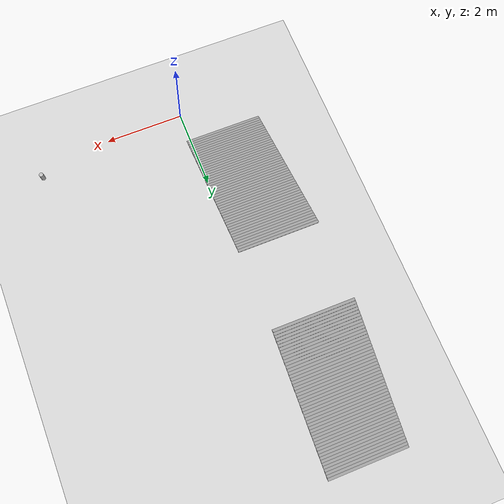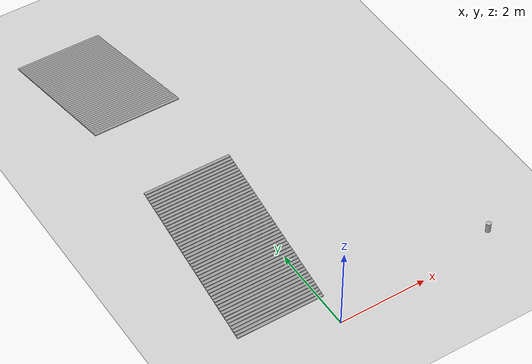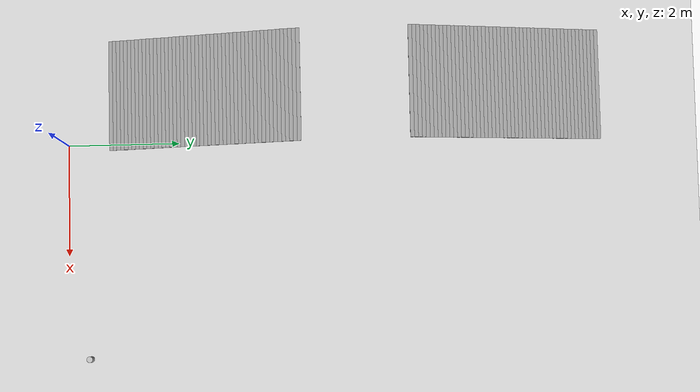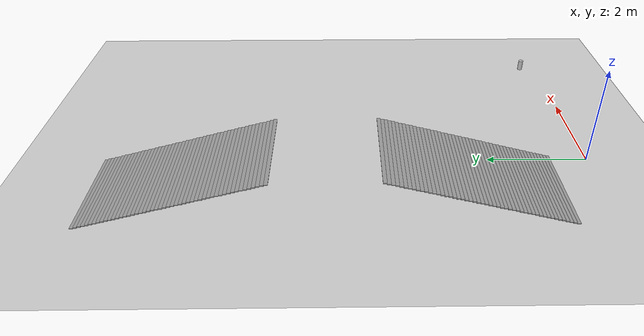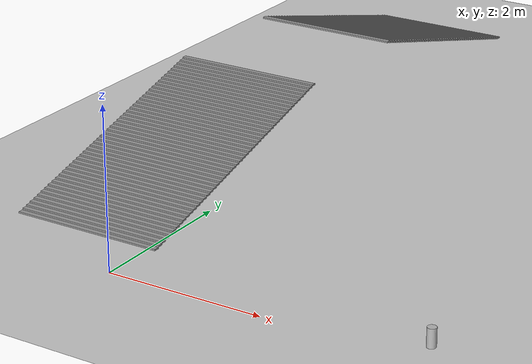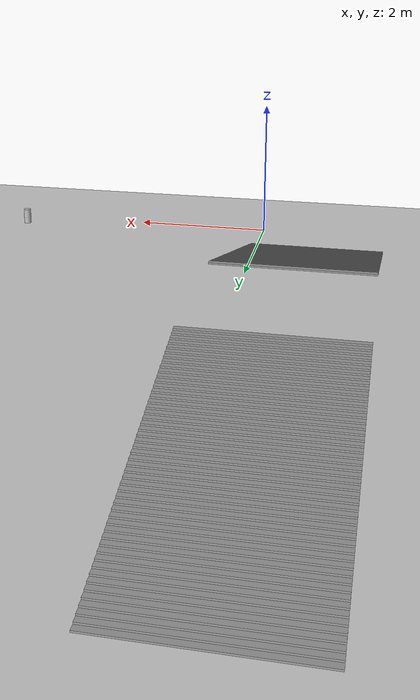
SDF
<sdf version="1.6">
 <world name="default">
  <light name="sun" type="directional">
   <pose>0 0 10 0 -0 0</pose>
   <diffuse>0.8 0.8 0.8 1</diffuse>
   <specular>0.1 0.1 0.1 1</specular>
   <attenuation>
    <range>1000</range>
    <constant>0.9</constant>
    <linear>0.01</linear>
    <quadratic>0.001</quadratic>
   </attenuation>
   <direction>-0.5 0.5 -1</direction>
  </light>
  <model name="ground_plane">
   <static>1</static>
   <link name="link">
    <collision name="collision">
     <geometry><plane><normal>0 0 1</normal><size>100 100</size></plane></geometry>
     <surface><friction><ode><mu>100</mu><mu2>50</mu2></ode></friction></surface>
    </collision>
    <visual name="visual">
     <cast_shadows>0</cast_shadows>
     <geometry><plane><normal>0 0 1</normal><size>100 100</size></plane></geometry>
     <material>
      <script><uri>file://media/materials/scripts/gazebo.material</uri><name>Gazebo/Grey</name></script>
     </material>
    </visual>
   </link>
  </model>
  <gravity>0 0 -9.8</gravity>
  <magnetic_field>6e-06 2.3e-05 -4.2e-05</magnetic_field>
  <atmosphere type="adiabatic"/>
  <physics name="default_physics" default="0" type="ode">
   <max_step_size>0.001</max_step_size>
   <real_time_factor>1</real_time_factor>
   <real_time_update_rate>1000</real_time_update_rate>
  </physics>
  <scene><ambient>0.4 0.4 0.4 1</ambient><background>0.7 0.7 0.7 1</background><shadows>1</shadows></scene>
  <spherical_coordinates>
   <surface_model>EARTH_WGS84</surface_model>
   <latitude_deg>0</latitude_deg>
   <longitude_deg>0</longitude_deg>
   <elevation>0</elevation>
   <heading_deg>0</heading_deg>
  </spherical_coordinates>
  <model name="beer">
   <link name="link">
    <pose>0 0 0.115 0 -0 0</pose>
    <inertial>
     <mass>0.39</mass>
     <inertia><ixx>0.00058</ixx><ixy>0</ixy><ixz>0</ixz><iyy>0.00058</iyy><iyz>0</iyz><izz>0.00019</izz></inertia>
    </inertial>
    <collision name="collision">
     <geometry><cylinder><radius>0.055</radius><length>0.23</length></cylinder></geometry>
    </collision>
    <visual name="visual">
     <geometry><cylinder><radius>0.055</radius><length>0.23</length></cylinder></geometry>
     <material>
      <script>
       <uri>model://beer/materials/scripts</uri>
       <uri>model://beer/materials/textures</uri>
       <name>Beer/Diffuse</name>
      </script>
     </material>
    </visual>
   </link>
   <pose>3.85469 0.373429 -7e-06 -1e-06 0 0.000297</pose>
  </model>
  <model name="table95">
   <pose>-0.91859 7.8959 0 0 -0 0</pose>
   <link name="Stairs_5">
    <visual name="Stairs_5_Visual_0">
     <pose>0 1.715 0.0095 0 -0 0</pose>
     <geometry><box><size>2 0.07 0.019</size></box></geometry>
     <material>
      <script><uri>file://media/materials/scripts/gazebo.material</uri><name>Gazebo/Grey</name></script>
      <ambient>1 1 1 1</ambient>
     </material>
     <meta><layer>0</layer></meta>
    </visual>
    <collision name="Stairs_5_Collision_0">
     <geometry><box><size>2 0.07 0.019</size></box></geometry>
     <pose>0 1.715 0.0095 0 -0 0</pose>
    </collision>
    <visual name="Stairs_5_Visual_1">
     <pose>0 1.645 0.0285 0 -0 0</pose>
     <geometry><box><size>2 0.07 0.019</size></box></geometry>
     <material>
      <script><uri>file://media/materials/scripts/gazebo.material</uri><name>Gazebo/Grey</name></script>
      <ambient>1 1 1 1</ambient>
     </material>
     <meta><layer>0</layer></meta>
    </visual>
    <collision name="Stairs_5_Collision_1">
     <geometry><box><size>2 0.07 0.019</size></box></geometry>
     <pose>0 1.645 0.0285 0 -0 0</pose>
    </collision>
    <visual name="Stairs_5_Visual_2">
     <pose>0 1.575 0.0475 0 -0 0</pose>
     <geometry><box><size>2 0.07 0.019</size></box></geometry>
     <material>
      <script><uri>file://media/materials/scripts/gazebo.material</uri><name>Gazebo/Grey</name></script>
      <ambient>1 1 1 1</ambient>
     </material>
     <meta><layer>0</layer></meta>
    </visual>
    <collision name="Stairs_5_Collision_2">
     <geometry><box><size>2 0.07 0.019</size></box></geometry>
     <pose>0 1.575 0.0475 0 -0 0</pose>
    </collision>
    <visual name="Stairs_5_Visual_3">
     <pose>0 1.505 0.0665 0 -0 0</pose>
     <geometry><box><size>2 0.07 0.019</size></box></geometry>
     <material>
      <script><uri>file://media/materials/scripts/gazebo.material</uri><name>Gazebo/Grey</name></script>
      <ambient>1 1 1 1</ambient>
     </material>
     <meta><layer>0</layer></meta>
    </visual>
    <collision name="Stairs_5_Collision_3">
     <geometry><box><size>2 0.07 0.019</size></box></geometry>
     <pose>0 1.505 0.0665 0 -0 0</pose>
    </collision>
    <visual name="Stairs_5_Visual_4">
     <pose>0 1.435 0.0855 0 -0 0</pose>
     <geometry><box><size>2 0.07 0.019</size></box></geometry>
     <material>
      <script><uri>file://media/materials/scripts/gazebo.material</uri><name>Gazebo/Grey</name></script>
      <ambient>1 1 1 1</ambient>
     </material>
     <meta><layer>0</layer></meta>
    </visual>
    <collision name="Stairs_5_Collision_4">
     <geometry><box><size>2 0.07 0.019</size></box></geometry>
     <pose>0 1.435 0.0855 0 -0 0</pose>
    </collision>
    <visual name="Stairs_5_Visual_5">
     <pose>0 1.365 0.1045 0 -0 0</pose>
     <geometry><box><size>2 0.07 0.019</size></box></geometry>
     <material>
      <script><uri>file://media/materials/scripts/gazebo.material</uri><name>Gazebo/Grey</name></script>
      <ambient>1 1 1 1</ambient>
     </material>
     <meta><layer>0</layer></meta>
    </visual>
    <collision name="Stairs_5_Collision_5">
     <geometry><box><size>2 0.07 0.019</size></box></geometry>
     <pose>0 1.365 0.1045 0 -0 0</pose>
    </collision>
    <visual name="Stairs_5_Visual_6">
     <pose>0 1.295 0.1235 0 -0 0</pose>
     <geometry><box><size>2 0.07 0.019</size></box></geometry>
     <material>
      <script><uri>file://media/materials/scripts/gazebo.material</uri><name>Gazebo/Grey</name></script>
      <ambient>1 1 1 1</ambient>
     </material>
     <meta><layer>0</layer></meta>
    </visual>
    <collision name="Stairs_5_Collision_6">
     <geometry><box><size>2 0.07 0.019</size></box></geometry>
     <pose>0 1.295 0.1235 0 -0 0</pose>
    </collision>
    <visual name="Stairs_5_Visual_7">
     <pose>0 1.225 0.1425 0 -0 0</pose>
     <geometry><box><size>2 0.07 0.019</size></box></geometry>
     <material>
      <script><uri>file://media/materials/scripts/gazebo.material</uri><name>Gazebo/Grey</name></script>
      <ambient>1 1 1 1</ambient>
     </material>
     <meta><layer>0</layer></meta>
    </visual>
    <collision name="Stairs_5_Collision_7">
     <geometry><box><size>2 0.07 0.019</size></box></geometry>
     <pose>0 1.225 0.1425 0 -0 0</pose>
    </collision>
    <visual name="Stairs_5_Visual_8">
     <pose>0 1.155 0.1615 0 -0 0</pose>
     <geometry><box><size>2 0.07 0.019</size></box></geometry>
     <material>
      <script><uri>file://media/materials/scripts/gazebo.material</uri><name>Gazebo/Grey</name></script>
      <ambient>1 1 1 1</ambient>
     </material>
     <meta><layer>0</layer></meta>
    </visual>
    <collision name="Stairs_5_Collision_8">
     <geometry><box><size>2 0.07 0.019</size></box></geometry>
     <pose>0 1.155 0.1615 0 -0 0</pose>
    </collision>
    <visual name="Stairs_5_Visual_9">
     <pose>0 1.085 0.1805 0 -0 0</pose>
     <geometry><box><size>2 0.07 0.019</size></box></geometry>
     <material>
      <script><uri>file://media/materials/scripts/gazebo.material</uri><name>Gazebo/Grey</name></script>
      <ambient>1 1 1 1</ambient>
     </material>
     <meta><layer>0</layer></meta>
    </visual>
    <collision name="Stairs_5_Collision_9">
     <geometry><box><size>2 0.07 0.019</size></box></geometry>
     <pose>0 1.085 0.1805 0 -0 0</pose>
    </collision>
    <visual name="Stairs_5_Visual_10">
     <pose>0 1.015 0.1995 0 -0 0</pose>
     <geometry><box><size>2 0.07 0.019</size></box></geometry>
     <material>
      <script><uri>file://media/materials/scripts/gazebo.material</uri><name>Gazebo/Grey</name></script>
      <ambient>1 1 1 1</ambient>
     </material>
     <meta><layer>0</layer></meta>
    </visual>
    <collision name="Stairs_5_Collision_10">
     <geometry><box><size>2 0.07 0.019</size></box></geometry>
     <pose>0 1.015 0.1995 0 -0 0</pose>
    </collision>
    <visual name="Stairs_5_Visual_11">
     <pose>0 0.945 0.2185 0 -0 0</pose>
     <geometry><box><size>2 0.07 0.019</size></box></geometry>
     <material>
      <script><uri>file://media/materials/scripts/gazebo.material</uri><name>Gazebo/Grey</name></script>
      <ambient>1 1 1 1</ambient>
     </material>
     <meta><layer>0</layer></meta>
    </visual>
    <collision name="Stairs_5_Collision_11">
     <geometry><box><size>2 0.07 0.019</size></box></geometry>
     <pose>0 0.945 0.2185 0 -0 0</pose>
    </collision>
    <visual name="Stairs_5_Visual_12">
     <pose>0 0.875 0.2375 0 -0 0</pose>
     <geometry><box><size>2 0.07 0.019</size></box></geometry>
     <material>
      <script><uri>file://media/materials/scripts/gazebo.material</uri><name>Gazebo/Grey</name></script>
      <ambient>1 1 1 1</ambient>
     </material>
     <meta><layer>0</layer></meta>
    </visual>
    <collision name="Stairs_5_Collision_12">
     <geometry><box><size>2 0.07 0.019</size></box></geometry>
     <pose>0 0.875 0.2375 0 -0 0</pose>
    </collision>
    <visual name="Stairs_5_Visual_13">
     <pose>0 0.805 0.2565 0 -0 0</pose>
     <geometry><box><size>2 0.07 0.019</size></box></geometry>
     <material>
      <script><uri>file://media/materials/scripts/gazebo.material</uri><name>Gazebo/Grey</name></script>
      <ambient>1 1 1 1</ambient>
     </material>
     <meta><layer>0</layer></meta>
    </visual>
    <collision name="Stairs_5_Collision_13">
     <geometry><box><size>2 0.07 0.019</size></box></geometry>
     <pose>0 0.805 0.2565 0 -0 0</pose>
    </collision>
    <visual name="Stairs_5_Visual_14">
     <pose>0 0.735 0.2755 0 -0 0</pose>
     <geometry><box><size>2 0.07 0.019</size></box></geometry>
     <material>
      <script><uri>file://media/materials/scripts/gazebo.material</uri><name>Gazebo/Grey</name></script>
      <ambient>1 1 1 1</ambient>
     </material>
     <meta><layer>0</layer></meta>
    </visual>
    <collision name="Stairs_5_Collision_14">
     <geometry><box><size>2 0.07 0.019</size></box></geometry>
     <pose>0 0.735 0.2755 0 -0 0</pose>
    </collision>
    <visual name="Stairs_5_Visual_15">
     <pose>0 0.665 0.2945 0 -0 0</pose>
     <geometry><box><size>2 0.07 0.019</size></box></geometry>
     <material>
      <script><uri>file://media/materials/scripts/gazebo.material</uri><name>Gazebo/Grey</name></script>
      <ambient>1 1 1 1</ambient>
     </material>
     <meta><layer>0</layer></meta>
    </visual>
    <collision name="Stairs_5_Collision_15">
     <geometry><box><size>2 0.07 0.019</size></box></geometry>
     <pose>0 0.665 0.2945 0 -0 0</pose>
    </collision>
    <visual name="Stairs_5_Visual_16">
     <pose>0 0.595 0.3135 0 -0 0</pose>
     <geometry><box><size>2 0.07 0.019</size></box></geometry>
     <material>
      <script><uri>file://media/materials/scripts/gazebo.material</uri><name>Gazebo/Grey</name></script>
      <ambient>1 1 1 1</ambient>
     </material>
     <meta><layer>0</layer></meta>
    </visual>
    <collision name="Stairs_5_Collision_16">
     <geometry><box><size>2 0.07 0.019</size></box></geometry>
     <pose>0 0.595 0.3135 0 -0 0</pose>
    </collision>
    <visual name="Stairs_5_Visual_17">
     <pose>0 0.525 0.3325 0 -0 0</pose>
     <geometry><box><size>2 0.07 0.019</size></box></geometry>
     <material>
      <script><uri>file://media/materials/scripts/gazebo.material</uri><name>Gazebo/Grey</name></script>
      <ambient>1 1 1 1</ambient>
     </material>
     <meta><layer>0</layer></meta>
    </visual>
    <collision name="Stairs_5_Collision_17">
     <geometry><box><size>2 0.07 0.019</size></box></geometry>
     <pose>0 0.525 0.3325 0 -0 0</pose>
    </collision>
    <visual name="Stairs_5_Visual_18">
     <pose>0 0.455 0.3515 0 -0 0</pose>
     <geometry><box><size>2 0.07 0.019</size></box></geometry>
     <material>
      <script><uri>file://media/materials/scripts/gazebo.material</uri><name>Gazebo/Grey</name></script>
      <ambient>1 1 1 1</ambient>
     </material>
     <meta><layer>0</layer></meta>
    </visual>
    <collision name="Stairs_5_Collision_18">
     <geometry><box><size>2 0.07 0.019</size></box></geometry>
     <pose>0 0.455 0.3515 0 -0 0</pose>
    </collision>
    <visual name="Stairs_5_Visual_19">
     <pose>0 0.385 0.3705 0 -0 0</pose>
     <geometry><box><size>2 0.07 0.019</size></box></geometry>
     <material>
      <script><uri>file://media/materials/scripts/gazebo.material</uri><name>Gazebo/Grey</name></script>
      <ambient>1 1 1 1</ambient>
     </material>
     <meta><layer>0</layer></meta>
    </visual>
    <collision name="Stairs_5_Collision_19">
     <geometry><box><size>2 0.07 0.019</size></box></geometry>
     <pose>0 0.385 0.3705 0 -0 0</pose>
    </collision>
    <visual name="Stairs_5_Visual_20">
     <pose>0 0.315 0.3895 0 -0 0</pose>
     <geometry><box><size>2 0.07 0.019</size></box></geometry>
     <material>
      <script><uri>file://media/materials/scripts/gazebo.material</uri><name>Gazebo/Grey</name></script>
      <ambient>1 1 1 1</ambient>
     </material>
     <meta><layer>0</layer></meta>
    </visual>
    <collision name="Stairs_5_Collision_20">
     <geometry><box><size>2 0.07 0.019</size></box></geometry>
     <pose>0 0.315 0.3895 0 -0 0</pose>
    </collision>
    <visual name="Stairs_5_Visual_21">
     <pose>0 0.245 0.4085 0 -0 0</pose>
     <geometry><box><size>2 0.07 0.019</size></box></geometry>
     <material>
      <script><uri>file://media/materials/scripts/gazebo.material</uri><name>Gazebo/Grey</name></script>
      <ambient>1 1 1 1</ambient>
     </material>
     <meta><layer>0</layer></meta>
    </visual>
    <collision name="Stairs_5_Collision_21">
     <geometry><box><size>2 0.07 0.019</size></box></geometry>
     <pose>0 0.245 0.4085 0 -0 0</pose>
    </collision>
    <visual name="Stairs_5_Visual_22">
     <pose>0 0.175 0.4275 0 -0 0</pose>
     <geometry><box><size>2 0.07 0.019</size></box></geometry>
     <material>
      <script><uri>file://media/materials/scripts/gazebo.material</uri><name>Gazebo/Grey</name></script>
      <ambient>1 1 1 1</ambient>
     </material>
     <meta><layer>0</layer></meta>
    </visual>
    <collision name="Stairs_5_Collision_22">
     <geometry><box><size>2 0.07 0.019</size></box></geometry>
     <pose>0 0.175 0.4275 0 -0 0</pose>
    </collision>
    <visual name="Stairs_5_Visual_23">
     <pose>0 0.105 0.4465 0 -0 0</pose>
     <geometry><box><size>2 0.07 0.019</size></box></geometry>
     <material>
      <script><uri>file://media/materials/scripts/gazebo.material</uri><name>Gazebo/Grey</name></script>
      <ambient>1 1 1 1</ambient>
     </material>
     <meta><layer>0</layer></meta>
    </visual>
    <collision name="Stairs_5_Collision_23">
     <geometry><box><size>2 0.07 0.019</size></box></geometry>
     <pose>0 0.105 0.4465 0 -0 0</pose>
    </collision>
    <visual name="Stairs_5_Visual_24">
     <pose>0 0.035 0.4655 0 -0 0</pose>
     <geometry><box><size>2 0.07 0.019</size></box></geometry>
     <material>
      <script><uri>file://media/materials/scripts/gazebo.material</uri><name>Gazebo/Grey</name></script>
      <ambient>1 1 1 1</ambient>
     </material>
     <meta><layer>0</layer></meta>
    </visual>
    <collision name="Stairs_5_Collision_24">
     <geometry><box><size>2 0.07 0.019</size></box></geometry>
     <pose>0 0.035 0.4655 0 -0 0</pose>
    </collision>
    <visual name="Stairs_5_Visual_25">
     <pose>0 -0.035 0.4845 0 -0 0</pose>
     <geometry><box><size>2 0.07 0.019</size></box></geometry>
     <material>
      <script><uri>file://media/materials/scripts/gazebo.material</uri><name>Gazebo/Grey</name></script>
      <ambient>1 1 1 1</ambient>
     </material>
     <meta><layer>0</layer></meta>
    </visual>
    <collision name="Stairs_5_Collision_25">
     <geometry><box><size>2 0.07 0.019</size></box></geometry>
     <pose>0 -0.035 0.4845 0 -0 0</pose>
    </collision>
    <visual name="Stairs_5_Visual_26">
     <pose>0 -0.105 0.5035 0 -0 0</pose>
     <geometry><box><size>2 0.07 0.019</size></box></geometry>
     <material>
      <script><uri>file://media/materials/scripts/gazebo.material</uri><name>Gazebo/Grey</name></script>
      <ambient>1 1 1 1</ambient>
     </material>
     <meta><layer>0</layer></meta>
    </visual>
    <collision name="Stairs_5_Collision_26">
     <geometry><box><size>2 0.07 0.019</size></box></geometry>
     <pose>0 -0.105 0.5035 0 -0 0</pose>
    </collision>
    <visual name="Stairs_5_Visual_27">
     <pose>0 -0.175 0.5225 0 -0 0</pose>
     <geometry><box><size>2 0.07 0.019</size></box></geometry>
     <material>
      <script><uri>file://media/materials/scripts/gazebo.material</uri><name>Gazebo/Grey</name></script>
      <ambient>1 1 1 1</ambient>
     </material>
     <meta><layer>0</layer></meta>
    </visual>
    <collision name="Stairs_5_Collision_27">
     <geometry><box><size>2 0.07 0.019</size></box></geometry>
     <pose>0 -0.175 0.5225 0 -0 0</pose>
    </collision>
    <visual name="Stairs_5_Visual_28">
     <pose>0 -0.245 0.5415 0 -0 0</pose>
     <geometry><box><size>2 0.07 0.019</size></box></geometry>
     <material>
      <script><uri>file://media/materials/scripts/gazebo.material</uri><name>Gazebo/Grey</name></script>
      <ambient>1 1 1 1</ambient>
     </material>
     <meta><layer>0</layer></meta>
    </visual>
    <collision name="Stairs_5_Collision_28">
     <geometry><box><size>2 0.07 0.019</size></box></geometry>
     <pose>0 -0.245 0.5415 0 -0 0</pose>
    </collision>
    <visual name="Stairs_5_Visual_29">
     <pose>0 -0.315 0.5605 0 -0 0</pose>
     <geometry><box><size>2 0.07 0.019</size></box></geometry>
     <material>
      <script><uri>file://media/materials/scripts/gazebo.material</uri><name>Gazebo/Grey</name></script>
      <ambient>1 1 1 1</ambient>
     </material>
     <meta><layer>0</layer></meta>
    </visual>
    <collision name="Stairs_5_Collision_29">
     <geometry><box><size>2 0.07 0.019</size></box></geometry>
     <pose>0 -0.315 0.5605 0 -0 0</pose>
    </collision>
    <visual name="Stairs_5_Visual_30">
     <pose>0 -0.385 0.5795 0 -0 0</pose>
     <geometry><box><size>2 0.07 0.019</size></box></geometry>
     <material>
      <script><uri>file://media/materials/scripts/gazebo.material</uri><name>Gazebo/Grey</name></script>
      <ambient>1 1 1 1</ambient>
     </material>
     <meta><layer>0</layer></meta>
    </visual>
    <collision name="Stairs_5_Collision_30">
     <geometry><box><size>2 0.07 0.019</size></box></geometry>
     <pose>0 -0.385 0.5795 0 -0 0</pose>
    </collision>
    <visual name="Stairs_5_Visual_31">
     <pose>0 -0.455 0.5985 0 -0 0</pose>
     <geometry><box><size>2 0.07 0.019</size></box></geometry>
     <material>
      <script><uri>file://media/materials/scripts/gazebo.material</uri><name>Gazebo/Grey</name></script>
      <ambient>1 1 1 1</ambient>
     </material>
     <meta><layer>0</layer></meta>
    </visual>
    <collision name="Stairs_5_Collision_31">
     <geometry><box><size>2 0.07 0.019</size></box></geometry>
     <pose>0 -0.455 0.5985 0 -0 0</pose>
    </collision>
    <visual name="Stairs_5_Visual_32">
     <pose>0 -0.525 0.6175 0 -0 0</pose>
     <geometry><box><size>2 0.07 0.019</size></box></geometry>
     <material>
      <script><uri>file://media/materials/scripts/gazebo.material</uri><name>Gazebo/Grey</name></script>
      <ambient>1 1 1 1</ambient>
     </material>
     <meta><layer>0</layer></meta>
    </visual>
    <collision name="Stairs_5_Collision_32">
     <geometry><box><size>2 0.07 0.019</size></box></geometry>
     <pose>0 -0.525 0.6175 0 -0 0</pose>
    </collision>
    <visual name="Stairs_5_Visual_33">
     <pose>0 -0.595 0.6365 0 -0 0</pose>
     <geometry><box><size>2 0.07 0.019</size></box></geometry>
     <material>
      <script><uri>file://media/materials/scripts/gazebo.material</uri><name>Gazebo/Grey</name></script>
      <ambient>1 1 1 1</ambient>
     </material>
     <meta><layer>0</layer></meta>
    </visual>
    <collision name="Stairs_5_Collision_33">
     <geometry><box><size>2 0.07 0.019</size></box></geometry>
     <pose>0 -0.595 0.6365 0 -0 0</pose>
    </collision>
    <visual name="Stairs_5_Visual_34">
     <pose>0 -0.665 0.6555 0 -0 0</pose>
     <geometry><box><size>2 0.07 0.019</size></box></geometry>
     <material>
      <script><uri>file://media/materials/scripts/gazebo.material</uri><name>Gazebo/Grey</name></script>
      <ambient>1 1 1 1</ambient>
     </material>
     <meta><layer>0</layer></meta>
    </visual>
    <collision name="Stairs_5_Collision_34">
     <geometry><box><size>2 0.07 0.019</size></box></geometry>
     <pose>0 -0.665 0.6555 0 -0 0</pose>
    </collision>
    <visual name="Stairs_5_Visual_35">
     <pose>0 -0.735 0.6745 0 -0 0</pose>
     <geometry><box><size>2 0.07 0.019</size></box></geometry>
     <material>
      <script><uri>file://media/materials/scripts/gazebo.material</uri><name>Gazebo/Grey</name></script>
      <ambient>1 1 1 1</ambient>
     </material>
     <meta><layer>0</layer></meta>
    </visual>
    <collision name="Stairs_5_Collision_35">
     <geometry><box><size>2 0.07 0.019</size></box></geometry>
     <pose>0 -0.735 0.6745 0 -0 0</pose>
    </collision>
    <visual name="Stairs_5_Visual_36">
     <pose>0 -0.805 0.6935 0 -0 0</pose>
     <geometry><box><size>2 0.07 0.019</size></box></geometry>
     <material>
      <script><uri>file://media/materials/scripts/gazebo.material</uri><name>Gazebo/Grey</name></script>
      <ambient>1 1 1 1</ambient>
     </material>
     <meta><layer>0</layer></meta>
    </visual>
    <collision name="Stairs_5_Collision_36">
     <geometry><box><size>2 0.07 0.019</size></box></geometry>
     <pose>0 -0.805 0.6935 0 -0 0</pose>
    </collision>
    <visual name="Stairs_5_Visual_37">
     <pose>0 -0.875 0.7125 0 -0 0</pose>
     <geometry><box><size>2 0.07 0.019</size></box></geometry>
     <material>
      <script><uri>file://media/materials/scripts/gazebo.material</uri><name>Gazebo/Grey</name></script>
      <ambient>1 1 1 1</ambient>
     </material>
     <meta><layer>0</layer></meta>
    </visual>
    <collision name="Stairs_5_Collision_37">
     <geometry><box><size>2 0.07 0.019</size></box></geometry>
     <pose>0 -0.875 0.7125 0 -0 0</pose>
    </collision>
    <visual name="Stairs_5_Visual_38">
     <pose>0 -0.945 0.7315 0 -0 0</pose>
     <geometry><box><size>2 0.07 0.019</size></box></geometry>
     <material>
      <script><uri>file://media/materials/scripts/gazebo.material</uri><name>Gazebo/Grey</name></script>
      <ambient>1 1 1 1</ambient>
     </material>
     <meta><layer>0</layer></meta>
    </visual>
    <collision name="Stairs_5_Collision_38">
     <geometry><box><size>2 0.07 0.019</size></box></geometry>
     <pose>0 -0.945 0.7315 0 -0 0</pose>
    </collision>
    <visual name="Stairs_5_Visual_39">
     <pose>0 -1.015 0.7505 0 -0 0</pose>
     <geometry><box><size>2 0.07 0.019</size></box></geometry>
     <material>
      <script><uri>file://media/materials/scripts/gazebo.material</uri><name>Gazebo/Grey</name></script>
      <ambient>1 1 1 1</ambient>
     </material>
     <meta><layer>0</layer></meta>
    </visual>
    <collision name="Stairs_5_Collision_39">
     <geometry><box><size>2 0.07 0.019</size></box></geometry>
     <pose>0 -1.015 0.7505 0 -0 0</pose>
    </collision>
    <visual name="Stairs_5_Visual_40">
     <pose>0 -1.085 0.7695 0 -0 0</pose>
     <geometry><box><size>2 0.07 0.019</size></box></geometry>
     <material>
      <script><uri>file://media/materials/scripts/gazebo.material</uri><name>Gazebo/Grey</name></script>
      <ambient>1 1 1 1</ambient>
     </material>
     <meta><layer>0</layer></meta>
    </visual>
    <collision name="Stairs_5_Collision_40">
     <geometry><box><size>2 0.07 0.019</size></box></geometry>
     <pose>0 -1.085 0.7695 0 -0 0</pose>
    </collision>
    <visual name="Stairs_5_Visual_41">
     <pose>0 -1.155 0.7885 0 -0 0</pose>
     <geometry><box><size>2 0.07 0.019</size></box></geometry>
     <material>
      <script><uri>file://media/materials/scripts/gazebo.material</uri><name>Gazebo/Grey</name></script>
      <ambient>1 1 1 1</ambient>
     </material>
     <meta><layer>0</layer></meta>
    </visual>
    <collision name="Stairs_5_Collision_41">
     <geometry><box><size>2 0.07 0.019</size></box></geometry>
     <pose>0 -1.155 0.7885 0 -0 0</pose>
    </collision>
    <visual name="Stairs_5_Visual_42">
     <pose>0 -1.225 0.8075 0 -0 0</pose>
     <geometry><box><size>2 0.07 0.019</size></box></geometry>
     <material>
      <script><uri>file://media/materials/scripts/gazebo.material</uri><name>Gazebo/Grey</name></script>
      <ambient>1 1 1 1</ambient>
     </material>
     <meta><layer>0</layer></meta>
    </visual>
    <collision name="Stairs_5_Collision_42">
     <geometry><box><size>2 0.07 0.019</size></box></geometry>
     <pose>0 -1.225 0.8075 0 -0 0</pose>
    </collision>
    <visual name="Stairs_5_Visual_43">
     <pose>0 -1.295 0.8265 0 -0 0</pose>
     <geometry><box><size>2 0.07 0.019</size></box></geometry>
     <material>
      <script><uri>file://media/materials/scripts/gazebo.material</uri><name>Gazebo/Grey</name></script>
      <ambient>1 1 1 1</ambient>
     </material>
     <meta><layer>0</layer></meta>
    </visual>
    <collision name="Stairs_5_Collision_43">
     <geometry><box><size>2 0.07 0.019</size></box></geometry>
     <pose>0 -1.295 0.8265 0 -0 0</pose>
    </collision>
    <visual name="Stairs_5_Visual_44">
     <pose>0 -1.365 0.8455 0 -0 0</pose>
     <geometry><box><size>2 0.07 0.019</size></box></geometry>
     <material>
      <script><uri>file://media/materials/scripts/gazebo.material</uri><name>Gazebo/Grey</name></script>
      <ambient>1 1 1 1</ambient>
     </material>
     <meta><layer>0</layer></meta>
    </visual>
    <collision name="Stairs_5_Collision_44">
     <geometry><box><size>2 0.07 0.019</size></box></geometry>
     <pose>0 -1.365 0.8455 0 -0 0</pose>
    </collision>
    <visual name="Stairs_5_Visual_45">
     <pose>0 -1.435 0.8645 0 -0 0</pose>
     <geometry><box><size>2 0.07 0.019</size></box></geometry>
     <material>
      <script><uri>file://media/materials/scripts/gazebo.material</uri><name>Gazebo/Grey</name></script>
      <ambient>1 1 1 1</ambient>
     </material>
     <meta><layer>0</layer></meta>
    </visual>
    <collision name="Stairs_5_Collision_45">
     <geometry><box><size>2 0.07 0.019</size></box></geometry>
     <pose>0 -1.435 0.8645 0 -0 0</pose>
    </collision>
    <visual name="Stairs_5_Visual_46">
     <pose>0 -1.505 0.8835 0 -0 0</pose>
     <geometry><box><size>2 0.07 0.019</size></box></geometry>
     <material>
      <script><uri>file://media/materials/scripts/gazebo.material</uri><name>Gazebo/Grey</name></script>
      <ambient>1 1 1 1</ambient>
     </material>
     <meta><layer>0</layer></meta>
    </visual>
    <collision name="Stairs_5_Collision_46">
     <geometry><box><size>2 0.07 0.019</size></box></geometry>
     <pose>0 -1.505 0.8835 0 -0 0</pose>
    </collision>
    <visual name="Stairs_5_Visual_47">
     <pose>0 -1.575 0.9025 0 -0 0</pose>
     <geometry><box><size>2 0.07 0.019</size></box></geometry>
     <material>
      <script><uri>file://media/materials/scripts/gazebo.material</uri><name>Gazebo/Grey</name></script>
      <ambient>1 1 1 1</ambient>
     </material>
     <meta><layer>0</layer></meta>
    </visual>
    <collision name="Stairs_5_Collision_47">
     <geometry><box><size>2 0.07 0.019</size></box></geometry>
     <pose>0 -1.575 0.9025 0 -0 0</pose>
    </collision>
    <visual name="Stairs_5_Visual_48">
     <pose>0 -1.645 0.9215 0 -0 0</pose>
     <geometry><box><size>2 0.07 0.019</size></box></geometry>
     <material>
      <script><uri>file://media/materials/scripts/gazebo.material</uri><name>Gazebo/Grey</name></script>
      <ambient>1 1 1 1</ambient>
     </material>
     <meta><layer>0</layer></meta>
    </visual>
    <collision name="Stairs_5_Collision_48">
     <geometry><box><size>2 0.07 0.019</size></box></geometry>
     <pose>0 -1.645 0.9215 0 -0 0</pose>
    </collision>
    <visual name="Stairs_5_Visual_49">
     <pose>0 -1.715 0.9405 0 -0 0</pose>
     <geometry><box><size>2 0.07 0.019</size></box></geometry>
     <material>
      <script><uri>file://media/materials/scripts/gazebo.material</uri><name>Gazebo/Grey</name></script>
      <ambient>1 1 1 1</ambient>
     </material>
     <meta><layer>0</layer></meta>
    </visual>
    <collision name="Stairs_5_Collision_49">
     <geometry><box><size>2 0.07 0.019</size></box></geometry>
     <pose>0 -1.715 0.9405 0 -0 0</pose>
    </collision>
   </link>
   <static>1</static>
  </model>
  <model name="table95_0">
   <pose>-0.900847 2.48275 0 0 -0 3.141</pose>
   <link name="Stairs_5">
    <visual name="Stairs_5_Visual_0">
     <pose>0 1.715 0.0095 0 -0 0</pose>
     <geometry><box><size>2 0.07 0.019</size></box></geometry>
     <material>
      <script><uri>file://media/materials/scripts/gazebo.material</uri><name>Gazebo/Grey</name></script>
      <ambient>1 1 1 1</ambient>
     </material>
     <meta><layer>0</layer></meta>
    </visual>
    <collision name="Stairs_5_Collision_0">
     <geometry><box><size>2 0.07 0.019</size></box></geometry>
     <pose>0 1.715 0.0095 0 -0 0</pose>
    </collision>
    <visual name="Stairs_5_Visual_1">
     <pose>0 1.645 0.0285 0 -0 0</pose>
     <geometry><box><size>2 0.07 0.019</size></box></geometry>
     <material>
      <script><uri>file://media/materials/scripts/gazebo.material</uri><name>Gazebo/Grey</name></script>
      <ambient>1 1 1 1</ambient>
     </material>
     <meta><layer>0</layer></meta>
    </visual>
    <collision name="Stairs_5_Collision_1">
     <geometry><box><size>2 0.07 0.019</size></box></geometry>
     <pose>0 1.645 0.0285 0 -0 0</pose>
    </collision>
    <visual name="Stairs_5_Visual_2">
     <pose>0 1.575 0.0475 0 -0 0</pose>
     <geometry><box><size>2 0.07 0.019</size></box></geometry>
     <material>
      <script><uri>file://media/materials/scripts/gazebo.material</uri><name>Gazebo/Grey</name></script>
      <ambient>1 1 1 1</ambient>
     </material>
     <meta><layer>0</layer></meta>
    </visual>
    <collision name="Stairs_5_Collision_2">
     <geometry><box><size>2 0.07 0.019</size></box></geometry>
     <pose>0 1.575 0.0475 0 -0 0</pose>
    </collision>
    <visual name="Stairs_5_Visual_3">
     <pose>0 1.505 0.0665 0 -0 0</pose>
     <geometry><box><size>2 0.07 0.019</size></box></geometry>
     <material>
      <script><uri>file://media/materials/scripts/gazebo.material</uri><name>Gazebo/Grey</name></script>
      <ambient>1 1 1 1</ambient>
     </material>
     <meta><layer>0</layer></meta>
    </visual>
    <collision name="Stairs_5_Collision_3">
     <geometry><box><size>2 0.07 0.019</size></box></geometry>
     <pose>0 1.505 0.0665 0 -0 0</pose>
    </collision>
    <visual name="Stairs_5_Visual_4">
     <pose>0 1.435 0.0855 0 -0 0</pose>
     <geometry><box><size>2 0.07 0.019</size></box></geometry>
     <material>
      <script><uri>file://media/materials/scripts/gazebo.material</uri><name>Gazebo/Grey</name></script>
      <ambient>1 1 1 1</ambient>
     </material>
     <meta><layer>0</layer></meta>
    </visual>
    <collision name="Stairs_5_Collision_4">
     <geometry><box><size>2 0.07 0.019</size></box></geometry>
     <pose>0 1.435 0.0855 0 -0 0</pose>
    </collision>
    <visual name="Stairs_5_Visual_5">
     <pose>0 1.365 0.1045 0 -0 0</pose>
     <geometry><box><size>2 0.07 0.019</size></box></geometry>
     <material>
      <script><uri>file://media/materials/scripts/gazebo.material</uri><name>Gazebo/Grey</name></script>
      <ambient>1 1 1 1</ambient>
     </material>
     <meta><layer>0</layer></meta>
    </visual>
    <collision name="Stairs_5_Collision_5">
     <geometry><box><size>2 0.07 0.019</size></box></geometry>
     <pose>0 1.365 0.1045 0 -0 0</pose>
    </collision>
    <visual name="Stairs_5_Visual_6">
     <pose>0 1.295 0.1235 0 -0 0</pose>
     <geometry><box><size>2 0.07 0.019</size></box></geometry>
     <material>
      <script><uri>file://media/materials/scripts/gazebo.material</uri><name>Gazebo/Grey</name></script>
      <ambient>1 1 1 1</ambient>
     </material>
     <meta><layer>0</layer></meta>
    </visual>
    <collision name="Stairs_5_Collision_6">
     <geometry><box><size>2 0.07 0.019</size></box></geometry>
     <pose>0 1.295 0.1235 0 -0 0</pose>
    </collision>
    <visual name="Stairs_5_Visual_7">
     <pose>0 1.225 0.1425 0 -0 0</pose>
     <geometry><box><size>2 0.07 0.019</size></box></geometry>
     <material>
      <script><uri>file://media/materials/scripts/gazebo.material</uri><name>Gazebo/Grey</name></script>
      <ambient>1 1 1 1</ambient>
     </material>
     <meta><layer>0</layer></meta>
    </visual>
    <collision name="Stairs_5_Collision_7">
     <geometry><box><size>2 0.07 0.019</size></box></geometry>
     <pose>0 1.225 0.1425 0 -0 0</pose>
    </collision>
    <visual name="Stairs_5_Visual_8">
     <pose>0 1.155 0.1615 0 -0 0</pose>
     <geometry><box><size>2 0.07 0.019</size></box></geometry>
     <material>
      <script><uri>file://media/materials/scripts/gazebo.material</uri><name>Gazebo/Grey</name></script>
      <ambient>1 1 1 1</ambient>
     </material>
     <meta><layer>0</layer></meta>
    </visual>
    <collision name="Stairs_5_Collision_8">
     <geometry><box><size>2 0.07 0.019</size></box></geometry>
     <pose>0 1.155 0.1615 0 -0 0</pose>
    </collision>
    <visual name="Stairs_5_Visual_9">
     <pose>0 1.085 0.1805 0 -0 0</pose>
     <geometry><box><size>2 0.07 0.019</size></box></geometry>
     <material>
      <script><uri>file://media/materials/scripts/gazebo.material</uri><name>Gazebo/Grey</name></script>
      <ambient>1 1 1 1</ambient>
     </material>
     <meta><layer>0</layer></meta>
    </visual>
    <collision name="Stairs_5_Collision_9">
     <geometry><box><size>2 0.07 0.019</size></box></geometry>
     <pose>0 1.085 0.1805 0 -0 0</pose>
    </collision>
    <visual name="Stairs_5_Visual_10">
     <pose>0 1.015 0.1995 0 -0 0</pose>
     <geometry><box><size>2 0.07 0.019</size></box></geometry>
     <material>
      <script><uri>file://media/materials/scripts/gazebo.material</uri><name>Gazebo/Grey</name></script>
      <ambient>1 1 1 1</ambient>
     </material>
     <meta><layer>0</layer></meta>
    </visual>
    <collision name="Stairs_5_Collision_10">
     <geometry><box><size>2 0.07 0.019</size></box></geometry>
     <pose>0 1.015 0.1995 0 -0 0</pose>
    </collision>
    <visual name="Stairs_5_Visual_11">
     <pose>0 0.945 0.2185 0 -0 0</pose>
     <geometry><box><size>2 0.07 0.019</size></box></geometry>
     <material>
      <script><uri>file://media/materials/scripts/gazebo.material</uri><name>Gazebo/Grey</name></script>
      <ambient>1 1 1 1</ambient>
     </material>
     <meta><layer>0</layer></meta>
    </visual>
    <collision name="Stairs_5_Collision_11">
     <geometry><box><size>2 0.07 0.019</size></box></geometry>
     <pose>0 0.945 0.2185 0 -0 0</pose>
    </collision>
    <visual name="Stairs_5_Visual_12">
     <pose>0 0.875 0.2375 0 -0 0</pose>
     <geometry><box><size>2 0.07 0.019</size></box></geometry>
     <material>
      <script><uri>file://media/materials/scripts/gazebo.material</uri><name>Gazebo/Grey</name></script>
      <ambient>1 1 1 1</ambient>
     </material>
     <meta><layer>0</layer></meta>
    </visual>
    <collision name="Stairs_5_Collision_12">
     <geometry><box><size>2 0.07 0.019</size></box></geometry>
     <pose>0 0.875 0.2375 0 -0 0</pose>
    </collision>
    <visual name="Stairs_5_Visual_13">
     <pose>0 0.805 0.2565 0 -0 0</pose>
     <geometry><box><size>2 0.07 0.019</size></box></geometry>
     <material>
      <script><uri>file://media/materials/scripts/gazebo.material</uri><name>Gazebo/Grey</name></script>
      <ambient>1 1 1 1</ambient>
     </material>
     <meta><layer>0</layer></meta>
    </visual>
    <collision name="Stairs_5_Collision_13">
     <geometry><box><size>2 0.07 0.019</size></box></geometry>
     <pose>0 0.805 0.2565 0 -0 0</pose>
    </collision>
    <visual name="Stairs_5_Visual_14">
     <pose>0 0.735 0.2755 0 -0 0</pose>
     <geometry><box><size>2 0.07 0.019</size></box></geometry>
     <material>
      <script><uri>file://media/materials/scripts/gazebo.material</uri><name>Gazebo/Grey</name></script>
      <ambient>1 1 1 1</ambient>
     </material>
     <meta><layer>0</layer></meta>
    </visual>
    <collision name="Stairs_5_Collision_14">
     <geometry><box><size>2 0.07 0.019</size></box></geometry>
     <pose>0 0.735 0.2755 0 -0 0</pose>
    </collision>
    <visual name="Stairs_5_Visual_15">
     <pose>0 0.665 0.2945 0 -0 0</pose>
     <geometry><box><size>2 0.07 0.019</size></box></geometry>
     <material>
      <script><uri>file://media/materials/scripts/gazebo.material</uri><name>Gazebo/Grey</name></script>
      <ambient>1 1 1 1</ambient>
     </material>
     <meta><layer>0</layer></meta>
    </visual>
    <collision name="Stairs_5_Collision_15">
     <geometry><box><size>2 0.07 0.019</size></box></geometry>
     <pose>0 0.665 0.2945 0 -0 0</pose>
    </collision>
    <visual name="Stairs_5_Visual_16">
     <pose>0 0.595 0.3135 0 -0 0</pose>
     <geometry><box><size>2 0.07 0.019</size></box></geometry>
     <material>
      <script><uri>file://media/materials/scripts/gazebo.material</uri><name>Gazebo/Grey</name></script>
      <ambient>1 1 1 1</ambient>
     </material>
     <meta><layer>0</layer></meta>
    </visual>
    <collision name="Stairs_5_Collision_16">
     <geometry><box><size>2 0.07 0.019</size></box></geometry>
     <pose>0 0.595 0.3135 0 -0 0</pose>
    </collision>
    <visual name="Stairs_5_Visual_17">
     <pose>0 0.525 0.3325 0 -0 0</pose>
     <geometry><box><size>2 0.07 0.019</size></box></geometry>
     <material>
      <script><uri>file://media/materials/scripts/gazebo.material</uri><name>Gazebo/Grey</name></script>
      <ambient>1 1 1 1</ambient>
     </material>
     <meta><layer>0</layer></meta>
    </visual>
    <collision name="Stairs_5_Collision_17">
     <geometry><box><size>2 0.07 0.019</size></box></geometry>
     <pose>0 0.525 0.3325 0 -0 0</pose>
    </collision>
    <visual name="Stairs_5_Visual_18">
     <pose>0 0.455 0.3515 0 -0 0</pose>
     <geometry><box><size>2 0.07 0.019</size></box></geometry>
     <material>
      <script><uri>file://media/materials/scripts/gazebo.material</uri><name>Gazebo/Grey</name></script>
      <ambient>1 1 1 1</ambient>
     </material>
     <meta><layer>0</layer></meta>
    </visual>
    <collision name="Stairs_5_Collision_18">
     <geometry><box><size>2 0.07 0.019</size></box></geometry>
     <pose>0 0.455 0.3515 0 -0 0</pose>
    </collision>
    <visual name="Stairs_5_Visual_19">
     <pose>0 0.385 0.3705 0 -0 0</pose>
     <geometry><box><size>2 0.07 0.019</size></box></geometry>
     <material>
      <script><uri>file://media/materials/scripts/gazebo.material</uri><name>Gazebo/Grey</name></script>
      <ambient>1 1 1 1</ambient>
     </material>
     <meta><layer>0</layer></meta>
    </visual>
    <collision name="Stairs_5_Collision_19">
     <geometry><box><size>2 0.07 0.019</size></box></geometry>
     <pose>0 0.385 0.3705 0 -0 0</pose>
    </collision>
    <visual name="Stairs_5_Visual_20">
     <pose>0 0.315 0.3895 0 -0 0</pose>
     <geometry><box><size>2 0.07 0.019</size></box></geometry>
     <material>
      <script><uri>file://media/materials/scripts/gazebo.material</uri><name>Gazebo/Grey</name></script>
      <ambient>1 1 1 1</ambient>
     </material>
     <meta><layer>0</layer></meta>
    </visual>
    <collision name="Stairs_5_Collision_20">
     <geometry><box><size>2 0.07 0.019</size></box></geometry>
     <pose>0 0.315 0.3895 0 -0 0</pose>
    </collision>
    <visual name="Stairs_5_Visual_21">
     <pose>0 0.245 0.4085 0 -0 0</pose>
     <geometry><box><size>2 0.07 0.019</size></box></geometry>
     <material>
      <script><uri>file://media/materials/scripts/gazebo.material</uri><name>Gazebo/Grey</name></script>
      <ambient>1 1 1 1</ambient>
     </material>
     <meta><layer>0</layer></meta>
    </visual>
    <collision name="Stairs_5_Collision_21">
     <geometry><box><size>2 0.07 0.019</size></box></geometry>
     <pose>0 0.245 0.4085 0 -0 0</pose>
    </collision>
    <visual name="Stairs_5_Visual_22">
     <pose>0 0.175 0.4275 0 -0 0</pose>
     <geometry><box><size>2 0.07 0.019</size></box></geometry>
     <material>
      <script><uri>file://media/materials/scripts/gazebo.material</uri><name>Gazebo/Grey</name></script>
      <ambient>1 1 1 1</ambient>
     </material>
     <meta><layer>0</layer></meta>
    </visual>
    <collision name="Stairs_5_Collision_22">
     <geometry><box><size>2 0.07 0.019</size></box></geometry>
     <pose>0 0.175 0.4275 0 -0 0</pose>
    </collision>
    <visual name="Stairs_5_Visual_23">
     <pose>0 0.105 0.4465 0 -0 0</pose>
     <geometry><box><size>2 0.07 0.019</size></box></geometry>
     <material>
      <script><uri>file://media/materials/scripts/gazebo.material</uri><name>Gazebo/Grey</name></script>
      <ambient>1 1 1 1</ambient>
     </material>
     <meta><layer>0</layer></meta>
    </visual>
    <collision name="Stairs_5_Collision_23">
     <geometry><box><size>2 0.07 0.019</size></box></geometry>
     <pose>0 0.105 0.4465 0 -0 0</pose>
    </collision>
    <visual name="Stairs_5_Visual_24">
     <pose>0 0.035 0.4655 0 -0 0</pose>
     <geometry><box><size>2 0.07 0.019</size></box></geometry>
     <material>
      <script><uri>file://media/materials/scripts/gazebo.material</uri><name>Gazebo/Grey</name></script>
      <ambient>1 1 1 1</ambient>
     </material>
     <meta><layer>0</layer></meta>
    </visual>
    <collision name="Stairs_5_Collision_24">
     <geometry><box><size>2 0.07 0.019</size></box></geometry>
     <pose>0 0.035 0.4655 0 -0 0</pose>
    </collision>
    <visual name="Stairs_5_Visual_25">
     <pose>0 -0.035 0.4845 0 -0 0</pose>
     <geometry><box><size>2 0.07 0.019</size></box></geometry>
     <material>
      <script><uri>file://media/materials/scripts/gazebo.material</uri><name>Gazebo/Grey</name></script>
      <ambient>1 1 1 1</ambient>
     </material>
     <meta><layer>0</layer></meta>
    </visual>
    <collision name="Stairs_5_Collision_25">
     <geometry><box><size>2 0.07 0.019</size></box></geometry>
     <pose>0 -0.035 0.4845 0 -0 0</pose>
    </collision>
    <visual name="Stairs_5_Visual_26">
     <pose>0 -0.105 0.5035 0 -0 0</pose>
     <geometry><box><size>2 0.07 0.019</size></box></geometry>
     <material>
      <script><uri>file://media/materials/scripts/gazebo.material</uri><name>Gazebo/Grey</name></script>
      <ambient>1 1 1 1</ambient>
     </material>
     <meta><layer>0</layer></meta>
    </visual>
    <collision name="Stairs_5_Collision_26">
     <geometry><box><size>2 0.07 0.019</size></box></geometry>
     <pose>0 -0.105 0.5035 0 -0 0</pose>
    </collision>
    <visual name="Stairs_5_Visual_27">
     <pose>0 -0.175 0.5225 0 -0 0</pose>
     <geometry><box><size>2 0.07 0.019</size></box></geometry>
     <material>
      <script><uri>file://media/materials/scripts/gazebo.material</uri><name>Gazebo/Grey</name></script>
      <ambient>1 1 1 1</ambient>
     </material>
     <meta><layer>0</layer></meta>
    </visual>
    <collision name="Stairs_5_Collision_27">
     <geometry><box><size>2 0.07 0.019</size></box></geometry>
     <pose>0 -0.175 0.5225 0 -0 0</pose>
    </collision>
    <visual name="Stairs_5_Visual_28">
     <pose>0 -0.245 0.5415 0 -0 0</pose>
     <geometry><box><size>2 0.07 0.019</size></box></geometry>
     <material>
      <script><uri>file://media/materials/scripts/gazebo.material</uri><name>Gazebo/Grey</name></script>
      <ambient>1 1 1 1</ambient>
     </material>
     <meta><layer>0</layer></meta>
    </visual>
    <collision name="Stairs_5_Collision_28">
     <geometry><box><size>2 0.07 0.019</size></box></geometry>
     <pose>0 -0.245 0.5415 0 -0 0</pose>
    </collision>
    <visual name="Stairs_5_Visual_29">
     <pose>0 -0.315 0.5605 0 -0 0</pose>
     <geometry><box><size>2 0.07 0.019</size></box></geometry>
     <material>
      <script><uri>file://media/materials/scripts/gazebo.material</uri><name>Gazebo/Grey</name></script>
      <ambient>1 1 1 1</ambient>
     </material>
     <meta><layer>0</layer></meta>
    </visual>
    <collision name="Stairs_5_Collision_29">
     <geometry><box><size>2 0.07 0.019</size></box></geometry>
     <pose>0 -0.315 0.5605 0 -0 0</pose>
    </collision>
    <visual name="Stairs_5_Visual_30">
     <pose>0 -0.385 0.5795 0 -0 0</pose>
     <geometry><box><size>2 0.07 0.019</size></box></geometry>
     <material>
      <script><uri>file://media/materials/scripts/gazebo.material</uri><name>Gazebo/Grey</name></script>
      <ambient>1 1 1 1</ambient>
     </material>
     <meta><layer>0</layer></meta>
    </visual>
    <collision name="Stairs_5_Collision_30">
     <geometry><box><size>2 0.07 0.019</size></box></geometry>
     <pose>0 -0.385 0.5795 0 -0 0</pose>
    </collision>
    <visual name="Stairs_5_Visual_31">
     <pose>0 -0.455 0.5985 0 -0 0</pose>
     <geometry><box><size>2 0.07 0.019</size></box></geometry>
     <material>
      <script><uri>file://media/materials/scripts/gazebo.material</uri><name>Gazebo/Grey</name></script>
      <ambient>1 1 1 1</ambient>
     </material>
     <meta><layer>0</layer></meta>
    </visual>
    <collision name="Stairs_5_Collision_31">
     <geometry><box><size>2 0.07 0.019</size></box></geometry>
     <pose>0 -0.455 0.5985 0 -0 0</pose>
    </collision>
    <visual name="Stairs_5_Visual_32">
     <pose>0 -0.525 0.6175 0 -0 0</pose>
     <geometry><box><size>2 0.07 0.019</size></box></geometry>
     <material>
      <script><uri>file://media/materials/scripts/gazebo.material</uri><name>Gazebo/Grey</name></script>
      <ambient>1 1 1 1</ambient>
     </material>
     <meta><layer>0</layer></meta>
    </visual>
    <collision name="Stairs_5_Collision_32">
     <geometry><box><size>2 0.07 0.019</size></box></geometry>
     <pose>0 -0.525 0.6175 0 -0 0</pose>
    </collision>
    <visual name="Stairs_5_Visual_33">
     <pose>0 -0.595 0.6365 0 -0 0</pose>
     <geometry><box><size>2 0.07 0.019</size></box></geometry>
     <material>
      <script><uri>file://media/materials/scripts/gazebo.material</uri><name>Gazebo/Grey</name></script>
      <ambient>1 1 1 1</ambient>
     </material>
     <meta><layer>0</layer></meta>
    </visual>
    <collision name="Stairs_5_Collision_33">
     <geometry><box><size>2 0.07 0.019</size></box></geometry>
     <pose>0 -0.595 0.6365 0 -0 0</pose>
    </collision>
    <visual name="Stairs_5_Visual_34">
     <pose>0 -0.665 0.6555 0 -0 0</pose>
     <geometry><box><size>2 0.07 0.019</size></box></geometry>
     <material>
      <script><uri>file://media/materials/scripts/gazebo.material</uri><name>Gazebo/Grey</name></script>
      <ambient>1 1 1 1</ambient>
     </material>
     <meta><layer>0</layer></meta>
    </visual>
    <collision name="Stairs_5_Collision_34">
     <geometry><box><size>2 0.07 0.019</size></box></geometry>
     <pose>0 -0.665 0.6555 0 -0 0</pose>
    </collision>
    <visual name="Stairs_5_Visual_35">
     <pose>0 -0.735 0.6745 0 -0 0</pose>
     <geometry><box><size>2 0.07 0.019</size></box></geometry>
     <material>
      <script><uri>file://media/materials/scripts/gazebo.material</uri><name>Gazebo/Grey</name></script>
      <ambient>1 1 1 1</ambient>
     </material>
     <meta><layer>0</layer></meta>
    </visual>
    <collision name="Stairs_5_Collision_35">
     <geometry><box><size>2 0.07 0.019</size></box></geometry>
     <pose>0 -0.735 0.6745 0 -0 0</pose>
    </collision>
    <visual name="Stairs_5_Visual_36">
     <pose>0 -0.805 0.6935 0 -0 0</pose>
     <geometry><box><size>2 0.07 0.019</size></box></geometry>
     <material>
      <script><uri>file://media/materials/scripts/gazebo.material</uri><name>Gazebo/Grey</name></script>
      <ambient>1 1 1 1</ambient>
     </material>
     <meta><layer>0</layer></meta>
    </visual>
    <collision name="Stairs_5_Collision_36">
     <geometry><box><size>2 0.07 0.019</size></box></geometry>
     <pose>0 -0.805 0.6935 0 -0 0</pose>
    </collision>
    <visual name="Stairs_5_Visual_37">
     <pose>0 -0.875 0.7125 0 -0 0</pose>
     <geometry><box><size>2 0.07 0.019</size></box></geometry>
     <material>
      <script><uri>file://media/materials/scripts/gazebo.material</uri><name>Gazebo/Grey</name></script>
      <ambient>1 1 1 1</ambient>
     </material>
     <meta><layer>0</layer></meta>
    </visual>
    <collision name="Stairs_5_Collision_37">
     <geometry><box><size>2 0.07 0.019</size></box></geometry>
     <pose>0 -0.875 0.7125 0 -0 0</pose>
    </collision>
    <visual name="Stairs_5_Visual_38">
     <pose>0 -0.945 0.7315 0 -0 0</pose>
     <geometry><box><size>2 0.07 0.019</size></box></geometry>
     <material>
      <script><uri>file://media/materials/scripts/gazebo.material</uri><name>Gazebo/Grey</name></script>
      <ambient>1 1 1 1</ambient>
     </material>
     <meta><layer>0</layer></meta>
    </visual>
    <collision name="Stairs_5_Collision_38">
     <geometry><box><size>2 0.07 0.019</size></box></geometry>
     <pose>0 -0.945 0.7315 0 -0 0</pose>
    </collision>
    <visual name="Stairs_5_Visual_39">
     <pose>0 -1.015 0.7505 0 -0 0</pose>
     <geometry><box><size>2 0.07 0.019</size></box></geometry>
     <material>
      <script><uri>file://media/materials/scripts/gazebo.material</uri><name>Gazebo/Grey</name></script>
      <ambient>1 1 1 1</ambient>
     </material>
     <meta><layer>0</layer></meta>
    </visual>
    <collision name="Stairs_5_Collision_39">
     <geometry><box><size>2 0.07 0.019</size></box></geometry>
     <pose>0 -1.015 0.7505 0 -0 0</pose>
    </collision>
    <visual name="Stairs_5_Visual_40">
     <pose>0 -1.085 0.7695 0 -0 0</pose>
     <geometry><box><size>2 0.07 0.019</size></box></geometry>
     <material>
      <script><uri>file://media/materials/scripts/gazebo.material</uri><name>Gazebo/Grey</name></script>
      <ambient>1 1 1 1</ambient>
     </material>
     <meta><layer>0</layer></meta>
    </visual>
    <collision name="Stairs_5_Collision_40">
     <geometry><box><size>2 0.07 0.019</size></box></geometry>
     <pose>0 -1.085 0.7695 0 -0 0</pose>
    </collision>
    <visual name="Stairs_5_Visual_41">
     <pose>0 -1.155 0.7885 0 -0 0</pose>
     <geometry><box><size>2 0.07 0.019</size></box></geometry>
     <material>
      <script><uri>file://media/materials/scripts/gazebo.material</uri><name>Gazebo/Grey</name></script>
      <ambient>1 1 1 1</ambient>
     </material>
     <meta><layer>0</layer></meta>
    </visual>
    <collision name="Stairs_5_Collision_41">
     <geometry><box><size>2 0.07 0.019</size></box></geometry>
     <pose>0 -1.155 0.7885 0 -0 0</pose>
    </collision>
    <visual name="Stairs_5_Visual_42">
     <pose>0 -1.225 0.8075 0 -0 0</pose>
     <geometry><box><size>2 0.07 0.019</size></box></geometry>
     <material>
      <script><uri>file://media/materials/scripts/gazebo.material</uri><name>Gazebo/Grey</name></script>
      <ambient>1 1 1 1</ambient>
     </material>
     <meta><layer>0</layer></meta>
    </visual>
    <collision name="Stairs_5_Collision_42">
     <geometry><box><size>2 0.07 0.019</size></box></geometry>
     <pose>0 -1.225 0.8075 0 -0 0</pose>
    </collision>
    <visual name="Stairs_5_Visual_43">
     <pose>0 -1.295 0.8265 0 -0 0</pose>
     <geometry><box><size>2 0.07 0.019</size></box></geometry>
     <material>
      <script><uri>file://media/materials/scripts/gazebo.material</uri><name>Gazebo/Grey</name></script>
      <ambient>1 1 1 1</ambient>
     </material>
     <meta><layer>0</layer></meta>
    </visual>
    <collision name="Stairs_5_Collision_43">
     <geometry><box><size>2 0.07 0.019</size></box></geometry>
     <pose>0 -1.295 0.8265 0 -0 0</pose>
    </collision>
    <visual name="Stairs_5_Visual_44">
     <pose>0 -1.365 0.8455 0 -0 0</pose>
     <geometry><box><size>2 0.07 0.019</size></box></geometry>
     <material>
      <script><uri>file://media/materials/scripts/gazebo.material</uri><name>Gazebo/Grey</name></script>
      <ambient>1 1 1 1</ambient>
     </material>
     <meta><layer>0</layer></meta>
    </visual>
    <collision name="Stairs_5_Collision_44">
     <geometry><box><size>2 0.07 0.019</size></box></geometry>
     <pose>0 -1.365 0.8455 0 -0 0</pose>
    </collision>
    <visual name="Stairs_5_Visual_45">
     <pose>0 -1.435 0.8645 0 -0 0</pose>
     <geometry><box><size>2 0.07 0.019</size></box></geometry>
     <material>
      <script><uri>file://media/materials/scripts/gazebo.material</uri><name>Gazebo/Grey</name></script>
      <ambient>1 1 1 1</ambient>
     </material>
     <meta><layer>0</layer></meta>
    </visual>
    <collision name="Stairs_5_Collision_45">
     <geometry><box><size>2 0.07 0.019</size></box></geometry>
     <pose>0 -1.435 0.8645 0 -0 0</pose>
    </collision>
    <visual name="Stairs_5_Visual_46">
     <pose>0 -1.505 0.8835 0 -0 0</pose>
     <geometry><box><size>2 0.07 0.019</size></box></geometry>
     <material>
      <script><uri>file://media/materials/scripts/gazebo.material</uri><name>Gazebo/Grey</name></script>
      <ambient>1 1 1 1</ambient>
     </material>
     <meta><layer>0</layer></meta>
    </visual>
    <collision name="Stairs_5_Collision_46">
     <geometry><box><size>2 0.07 0.019</size></box></geometry>
     <pose>0 -1.505 0.8835 0 -0 0</pose>
    </collision>
    <visual name="Stairs_5_Visual_47">
     <pose>0 -1.575 0.9025 0 -0 0</pose>
     <geometry><box><size>2 0.07 0.019</size></box></geometry>
     <material>
      <script><uri>file://media/materials/scripts/gazebo.material</uri><name>Gazebo/Grey</name></script>
      <ambient>1 1 1 1</ambient>
     </material>
     <meta><layer>0</layer></meta>
    </visual>
    <collision name="Stairs_5_Collision_47">
     <geometry><box><size>2 0.07 0.019</size></box></geometry>
     <pose>0 -1.575 0.9025 0 -0 0</pose>
    </collision>
    <visual name="Stairs_5_Visual_48">
     <pose>0 -1.645 0.9215 0 -0 0</pose>
     <geometry><box><size>2 0.07 0.019</size></box></geometry>
     <material>
      <script><uri>file://media/materials/scripts/gazebo.material</uri><name>Gazebo/Grey</name></script>
      <ambient>1 1 1 1</ambient>
     </material>
     <meta><layer>0</layer></meta>
    </visual>
    <collision name="Stairs_5_Collision_48">
     <geometry><box><size>2 0.07 0.019</size></box></geometry>
     <pose>0 -1.645 0.9215 0 -0 0</pose>
    </collision>
    <visual name="Stairs_5_Visual_49">
     <pose>0 -1.715 0.9405 0 -0 0</pose>
     <geometry><box><size>2 0.07 0.019</size></box></geometry>
     <material>
      <script><uri>file://media/materials/scripts/gazebo.material</uri><name>Gazebo/Grey</name></script>
      <ambient>1 1 1 1</ambient>
     </material>
     <meta><layer>0</layer></meta>
    </visual>
    <collision name="Stairs_5_Collision_49">
     <geometry><box><size>2 0.07 0.019</size></box></geometry>
     <pose>0 -1.715 0.9405 0 -0 0</pose>
    </collision>
   </link>
   <static>1</static>
  </model>
 </world>
</sdf>
